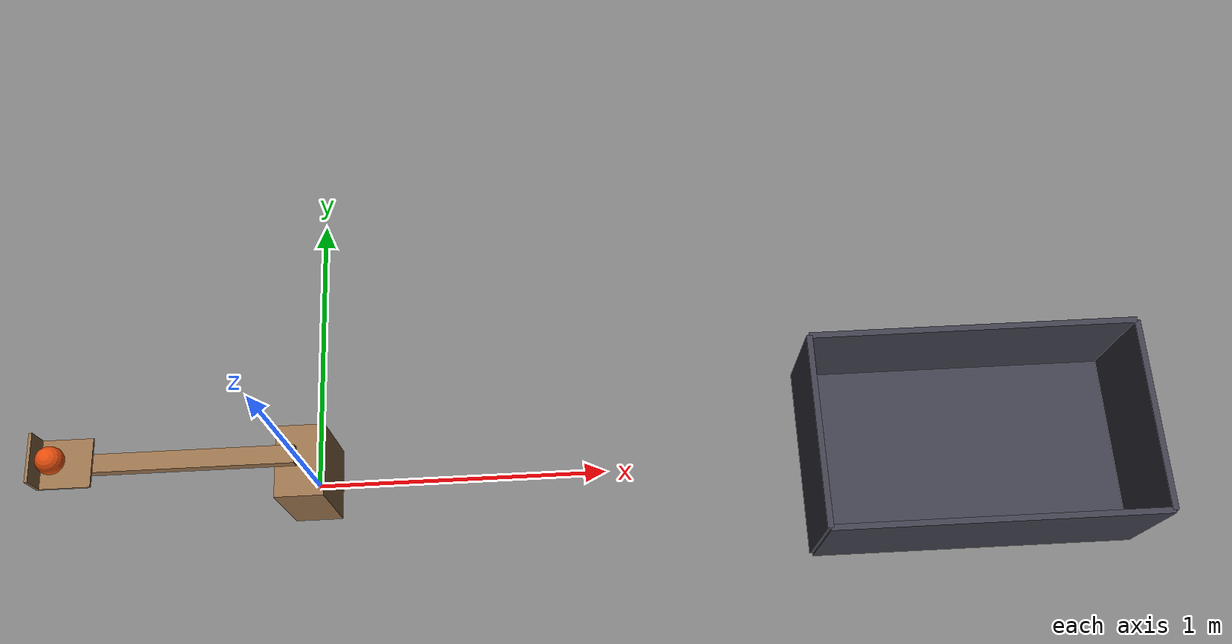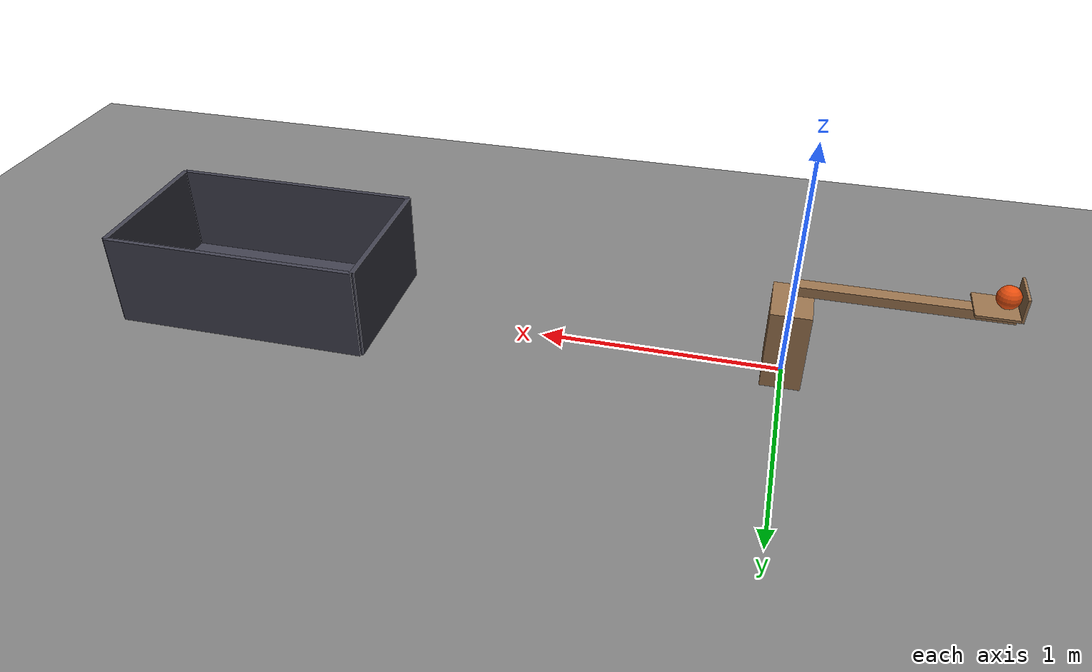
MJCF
<mujoco model="spring_catapult_into_a_bucket">
  <compiler angle="radian"/>
  <option timestep="0.002"/>
  <worldbody>
    <geom name="floor" type="plane" size="8 8 0.1" friction="0.8 0.005 0.002"/>
    <geom name="catapult_stand" type="box" pos="0 0 0.17" size="0.08 0.12 0.17" friction="1.5 0.005 0.0001" solref="0.01 1" rgba="0.6 0.45 0.3 1"/>
    <body name="catapult" pos="0 0 0.4">
      <joint name="catapult_hinge" type="hinge" pos="0 0 0" axis="0 1 0" limited="true" range="0 0.872665" stiffness="5.5" springref="1.5708" damping="0.02" armature="0.01"/>
      <geom name="catapult_arm" type="box" pos="-0.4 0 0" size="0.4 0.03 0.02" mass="0.35" friction="1.5 0.005 0.0001" solref="0.01 1" rgba="0.6 0.45 0.3 1"/>
      <geom name="catapult_scoop_base" type="box" pos="-0.72 0 0.025" size="0.08 0.08 0.005" mass="0.02" friction="1.5 0.005 0.0001" solref="0.01 1" rgba="0.6 0.45 0.3 1"/>
      <geom name="catapult_scoop_back" type="box" pos="-0.805 0 0.07" size="0.005 0.08 0.05" mass="0.01" friction="1.5 0.005 0.0001" solref="0.01 1" rgba="0.6 0.45 0.3 1"/>
    </body>
    <body name="ball" pos="-0.755 0 0.475">
      <freejoint/>
      <geom name="ball" type="sphere" pos="0 0 0" size="0.045" mass="0.08" condim="6" friction="1.5 0.01 0.004" solref="0.01 1" rgba="0.9 0.3 0.05 1"/>
    </body>
    <body name="bucket">
      <geom name="bucket_base" type="box" pos="2.245 0 0.01" size="0.55 0.325 0.01" friction="0.9 0.01 0.004" solref="0.01 1" rgba="0.25 0.25 0.3 1"/>
      <geom name="bucket_near_wall" type="box" pos="1.695 0 0.2" size="0.01 0.325 0.2" friction="0.9 0.01 0.004" solref="0.01 1" rgba="0.25 0.25 0.3 1"/>
      <geom name="bucket_far_wall" type="box" pos="2.795 0 0.2" size="0.01 0.325 0.2" friction="0.9 0.01 0.004" solref="0.01 1" rgba="0.25 0.25 0.3 1"/>
      <geom name="bucket_left_wall" type="box" pos="2.245 0.325 0.2" size="0.55 0.01 0.2" friction="0.9 0.01 0.004" solref="0.01 1" rgba="0.25 0.25 0.3 1"/>
      <geom name="bucket_right_wall" type="box" pos="2.245 -0.325 0.2" size="0.55 0.01 0.2" friction="0.9 0.01 0.004" solref="0.01 1" rgba="0.25 0.25 0.3 1"/>
    </body>
  </worldbody>
  <keyframe>
    <key name="start" qpos="0 -0.755 0 0.475 1 0 0 0" qvel="0 0 0 0 0 0 0"/>
  </keyframe>
</mujoco>
